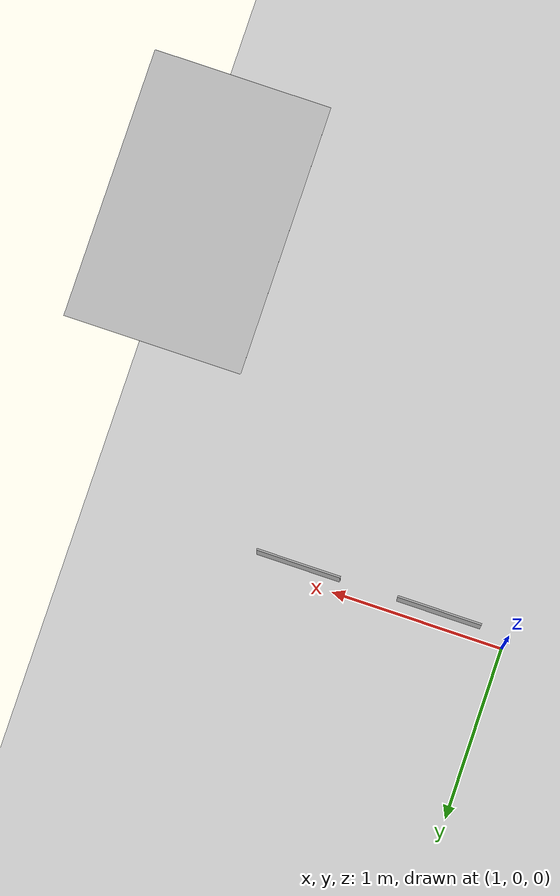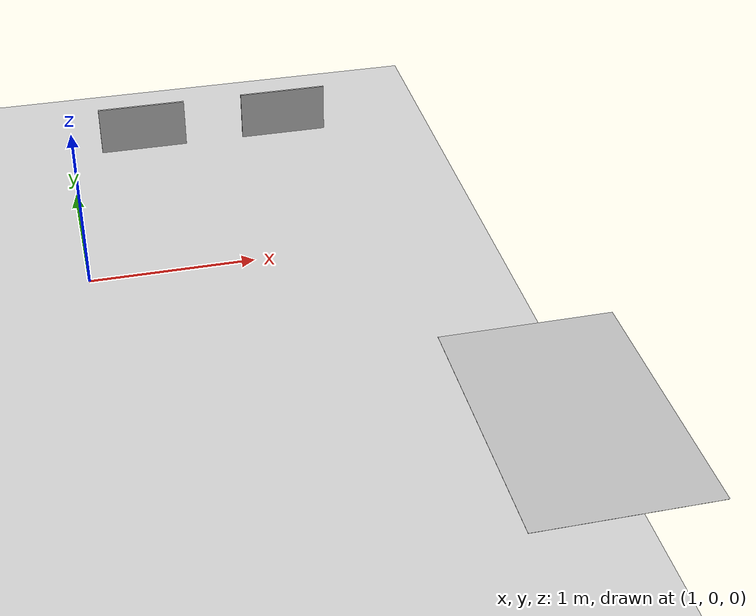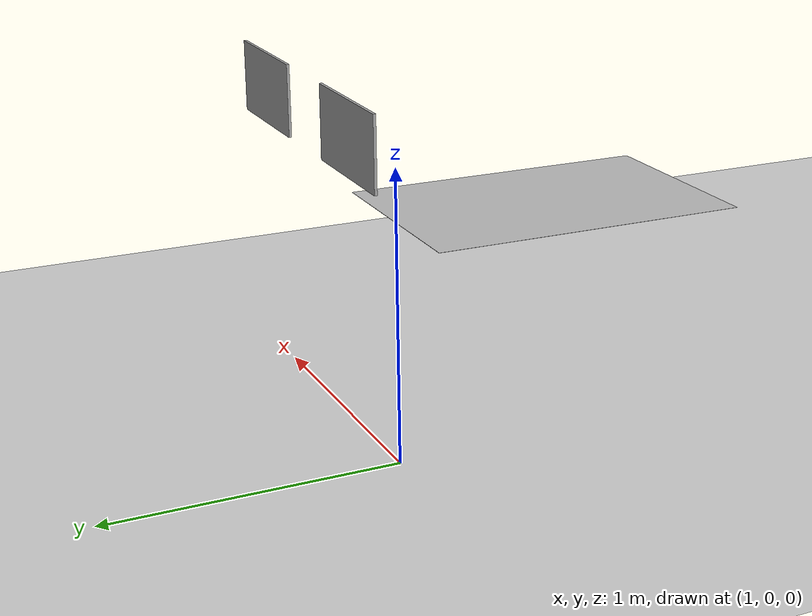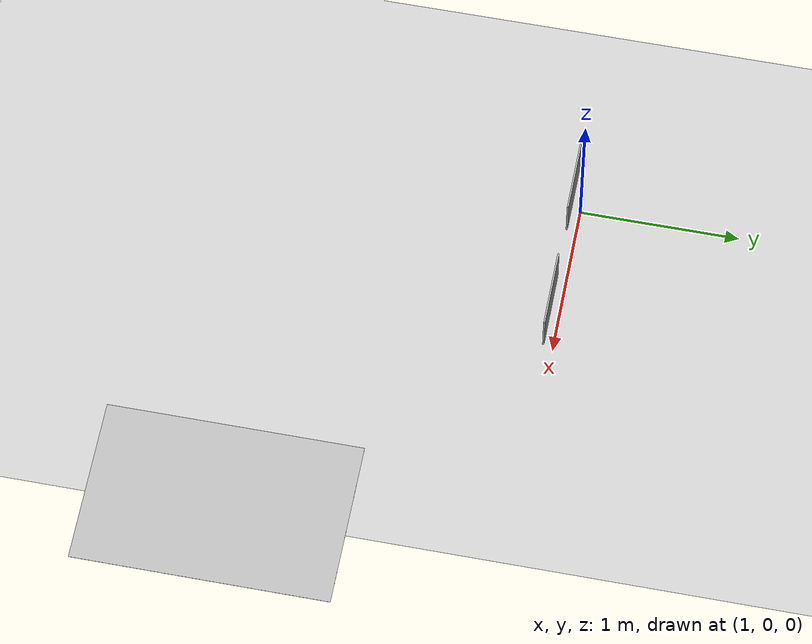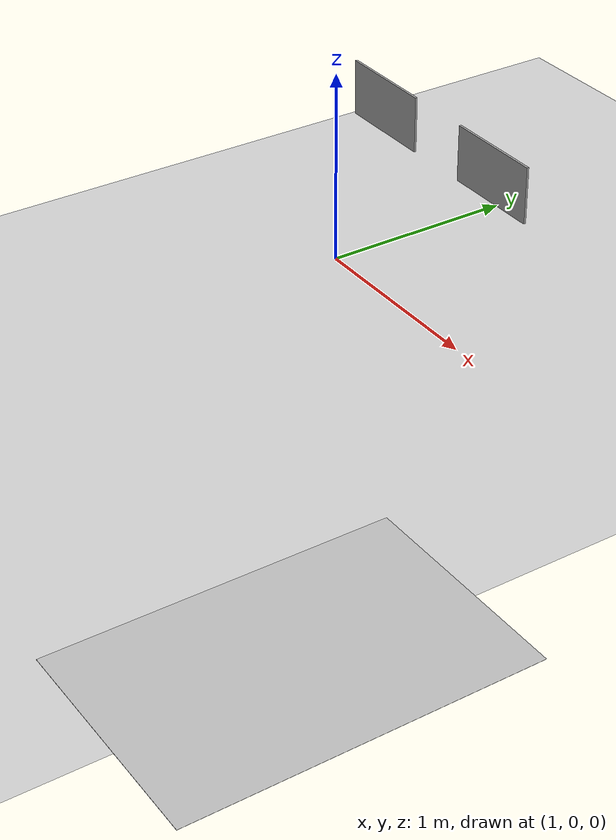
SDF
<?xml version='1.0'?>
<sdf version='1.6'>
  <world name='default'>
    <light name='sun' type='directional'>
      <cast_shadows>0</cast_shadows>
      <pose>0 0 10 0 -0 0</pose>
      <diffuse>0.8 0.8 0.8 1</diffuse>
      <specular>0.2 0.2 0.2 1</specular>
      <attenuation>
        <range>1000</range>
        <constant>0.9</constant>
        <linear>0.01</linear>
        <quadratic>0.001</quadratic>
      </attenuation>
      <direction>-0.5 0.1 -0.9</direction>
    </light>
    <gravity>0 0 -9.8</gravity>
    <magnetic_field>6e-06 2.3e-05 -4.2e-05</magnetic_field>
    <atmosphere type='adiabatic'/>
    <physics name='default_physics' default='0' type='ode'>
      <max_step_size>0.0016</max_step_size>
      <real_time_factor>1</real_time_factor>
      <real_time_update_rate>625</real_time_update_rate>
    </physics>
    <scene>
      <ambient>0.4 0.4 0.4 1</ambient>
      <background>0 0 0 1</background>
      <shadows>1</shadows>
      <grid>false</grid>
    </scene>
    <spherical_coordinates>
      <surface_model>EARTH_WGS84</surface_model>
      <latitude_deg>0</latitude_deg>
      <longitude_deg>0</longitude_deg>
      <elevation>0</elevation>
      <heading_deg>0</heading_deg>
    </spherical_coordinates>
    <model name='conde_world'>
      <static>1</static>
      <link name='link_ground'>
        <collision name='collision'>
          <geometry>
            <plane>
              <normal>0 0 1</normal>
              <size>6.95 16.7</size>
            </plane>
          </geometry>
          <surface>
            <friction>
              <ode>
                <mu>100</mu>
                <mu2>50</mu2>
              </ode>
            </friction>
            <bounce/>
            <contact>
              <ode/>
            </contact>
          </surface>
          <max_contacts>10</max_contacts>
        </collision>
        <visual name='visual_ground'>
          <cast_shadows>0</cast_shadows>
          <pose>0 0 0 0 0 0</pose>
          <geometry>
            <plane>
              <normal>0 0 1</normal>
              <size>6.95 16.7</size>
            </plane>
          </geometry>
          <material>
            <script>
              <uri>model://materials/scripts</uri>
              <uri>model://materials/textures</uri>
              <name>Floor/Image</name>
            </script>
          </material>
        </visual>

        <velocity_decay>
          <linear>0</linear>
          <angular>0</angular>
        </velocity_decay>
        <self_collide>0</self_collide>
        <kinematic>0</kinematic>
        <gravity>1</gravity>
      </link>

      <pose>0 0 0 0 0 0</pose>
    </model>

    <model name='park'>
			<static>1</static>
			<link name='link_park'>
        <visual name='visual_park'>
          <cast_shadows>0</cast_shadows>
          <pose>3.4 -1.8 0.0001 0 0 3.1415</pose>
          <geometry>
            <plane>
              <normal>0 0 1</normal>
              <size>1.05 1.6</size>
            </plane>
          </geometry>
          <material>
            <script>
              <uri>model://materials/scripts</uri>
              <uri>model://materials/textures</uri>
              <name>Park/Image</name>
            </script>
          </material>
        </visual>
        <velocity_decay>
          <linear>0</linear>
          <angular>0</angular>
        </velocity_decay>
        <self_collide>0</self_collide>
        <kinematic>0</kinematic>
        <gravity>1</gravity>
      </link>
    </model>

    <model name='semaphore_monitor'>
      <static>1</static>
      <pose>1.8 0 0 0 -0 0</pose>
      <link name='lcd1'>
        <pose>-0.4 0 1 1.57 4.33681e-19 3.14</pose>
        <collision name='collision1'>
          <geometry>
            <box>
              <size>0.4758 0.2673 0.01</size>
            </box>
          </geometry>
          <max_contacts>10</max_contacts>
          <surface>
            <bounce/>
            <friction>
              <ode/>
            </friction>
            <contact>
              <ode/>
            </contact>
          </surface>
        </collision>
        <visual name='visual1'>
          <geometry>
            <box>
              <size>0.4758 0.2673 0.01</size>
            </box>
          </geometry>
			<material>
				<ambient>0.69 0.69 0.69 1</ambient>
				<diffuse>0.69 0.69 0.69 1</diffuse>
				<specular>0.1 0.1 0.1 1</specular>
				<emissive>0 0 0 0</emissive>
			</material>
          <plugin name='display_video_controller1' filename='libgazebo_ros_video.so'>
            <robotNamespace>monitor1</robotNamespace>
            <topicName>image1</topicName>
            <height>120</height>
            <width>160</width>
          </plugin>
        </visual>
        <velocity_decay>
          <linear>0</linear>
          <angular>0</angular>
        </velocity_decay>
        <self_collide>0</self_collide>
        <kinematic>0</kinematic>
        <gravity>1</gravity>
      </link>
      <link name='lcd2'>
        <pose>0.4 0 1 1.57 -0 0</pose>
        <collision name='collision2'>
          <geometry>
            <box>
              <size>0.4758 0.2673 0.01</size>
            </box>
          </geometry>
          <max_contacts>10</max_contacts>
          <surface>
            <bounce/>
            <friction>
              <ode/>
            </friction>
            <contact>
              <ode/>
            </contact>
          </surface>
        </collision>
        <visual name='visual2'>
          <geometry>
            <box>
              <size>0.4758 0.2673 0.01</size>
            </box>
          </geometry>
			<material>
				<ambient>0.69 0.69 0.69 1</ambient>
				<diffuse>0.69 0.69 0.69 1</diffuse>
				<specular>0.1 0.1 0.1 1</specular>
				<emissive>0 0 0 0</emissive>
			</material>
          <plugin name='display_video_controller2' filename='libgazebo_ros_video.so'>
            <robotNamespace>monitor2</robotNamespace>
            <topicName>image2</topicName>
            <height>120</height>
            <width>160</width>
          </plugin>
        </visual>
        <velocity_decay>
          <linear>0</linear>
          <angular>0</angular>
        </velocity_decay>
        <self_collide>0</self_collide>
        <kinematic>0</kinematic>
        <gravity>1</gravity>
      </link>
    </model>

		<gui fullscreen='0'>
      <camera name='user_camera'>
        <pose frame=''>7.0849 -8.35309 6.00103 0 0.633798 2.42819</pose>
        <view_controller>orbit</view_controller>
        <projection_type>perspective</projection_type>
      </camera>
    </gui>
  </world>
</sdf>
